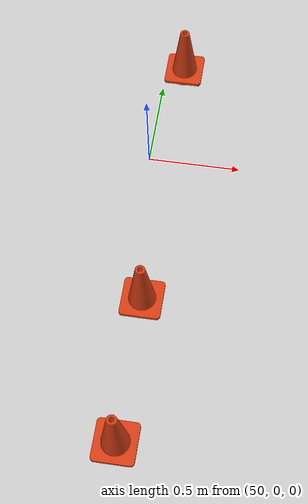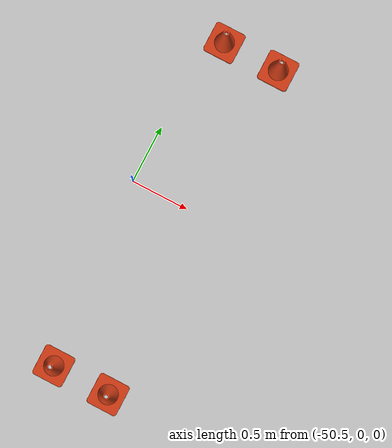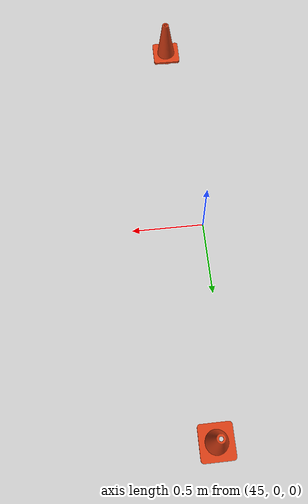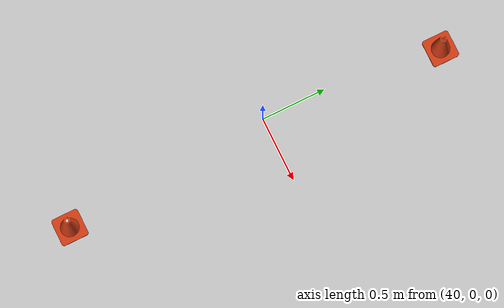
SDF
<sdf version="1.6">
 <world name="skidpad">
  <physics name="dart_physics" type="dart">
   <max_step_size>0.001</max_step_size>
   <real_time_update_rate>100</real_time_update_rate>
   <thread_count>20</thread_count>
  </physics>
  <plugin filename="gz-sim-scene-broadcaster-system" name="gz::sim::systems::SceneBroadcaster">
   <publish_rate>10</publish_rate>
  </plugin>
  <plugin filename="gz-sim-user-commands-system" name="gz::sim::systems::UserCommands"/>
  <plugin filename="gz-sim-physics-system" name="gz::sim::systems::Physics"/>
  <plugin filename="gz-sim-sensors-system" name="gz::sim::systems::Sensors">
   <render_engine>ogre2</render_engine>
  </plugin>
  <plugin filename="gz-sim-imu-system" name="gz::sim::systems::Imu"/>
  <plugin filename="ignition-gazebo-navsat-system" name="ignition::gazebo::systems::NavSat"/>
  <spherical_coordinates>
   <surface_model>EARTH_WGS84</surface_model>
   <world_frame_orientation>ENU</world_frame_orientation>
   <latitude_deg>-22.986687</latitude_deg>
   <longitude_deg>-43.202501</longitude_deg>
   <elevation>0</elevation>
   <heading_deg>180</heading_deg>
  </spherical_coordinates>
  <model name="ground_plane">
   <static>true</static>
   <link name="ground_plane_link">
    <collision name="collision">
     <geometry><plane><normal>0 0 1</normal><size>100 100</size></plane></geometry>
    </collision>
    <visual name="visual">
     <geometry><plane><normal>0 0 1</normal><size>100 100</size></plane></geometry>
     <material>
      <ambient>0.8 0.8 0.8 1</ambient>
      <diffuse>0.8 0.8 0.8 1</diffuse>
      <specular>0.1 0.1 0.1 1</specular>
      <emissive>0 0 0 1</emissive>
     </material>
    </visual>
   </link>
  </model>
  <light name="sun" type="directional">
   <pose>0 0 10 0 0 0</pose>
   <diffuse>1 1 1 1</diffuse>
   <specular>0.1 0.1 0.1 1</specular>
   <attenuation>
    <range>1000</range>
    <constant>0.9</constant>
    <linear>0.01</linear>
    <quadratic>0.001</quadratic>
   </attenuation>
   <direction>-0.5 0.5 -1</direction>
  </light>
  <include>
   <pose>30.0 1.5 0.15 0 0 0</pose>
   <uri>model://orange_cone</uri>
   <name>orange_cone_28</name>
   <covariance x="0.01" y="0.01" xy="0.0"/>
  </include>
  <include>
   <pose>30.0 -1.5 0.15 0 0 0</pose>
   <uri>model://orange_cone</uri>
   <name>orange_cone_29</name>
   <covariance x="0.01" y="0.01" xy="0.0"/>
  </include>
  <include>
   <pose>35.0 1.5 0.15 0 0 0</pose>
   <uri>model://orange_cone</uri>
   <name>orange_cone_30</name>
   <covariance x="0.01" y="0.01" xy="0.0"/>
  </include>
  <include>
   <pose>35.0 -1.5 0.15 0 0 0</pose>
   <uri>model://orange_cone</uri>
   <name>orange_cone_31</name>
   <covariance x="0.01" y="0.01" xy="0.0"/>
  </include>
  <include>
   <pose>40.0 1.5 0.15 0 0 0</pose>
   <uri>model://orange_cone</uri>
   <name>orange_cone_32</name>
   <covariance x="0.01" y="0.01" xy="0.0"/>
  </include>
  <include>
   <pose>40.0 -1.5 0.15 0 0 0</pose>
   <uri>model://orange_cone</uri>
   <name>orange_cone_33</name>
   <covariance x="0.01" y="0.01" xy="0.0"/>
  </include>
  <include>
   <pose>45.0 1.5 0.15 0 0 0</pose>
   <uri>model://orange_cone</uri>
   <name>orange_cone_34</name>
   <covariance x="0.01" y="0.01" xy="0.0"/>
  </include>
  <include>
   <pose>45.0 -1.5 0.15 0 0 0</pose>
   <uri>model://orange_cone</uri>
   <name>orange_cone_35</name>
   <covariance x="0.01" y="0.01" xy="0.0"/>
  </include>
  <include>
   <pose>50.0 1.5 0.15 0 0 0</pose>
   <uri>model://orange_cone</uri>
   <name>orange_cone_36</name>
   <covariance x="0.01" y="0.01" xy="0.0"/>
  </include>
  <include>
   <pose>50.0 -1.5 0.15 0 0 0</pose>
   <uri>model://orange_cone</uri>
   <name>orange_cone_37</name>
   <covariance x="0.01" y="0.01" xy="0.0"/>
  </include>
  <include>
   <pose>50.0 0.75 0.15 0 0 0</pose>
   <uri>model://orange_cone</uri>
   <name>orange_cone_38</name>
   <covariance x="0.01" y="0.01" xy="0.0"/>
  </include>
  <include>
   <pose>50.0 -0.75 0.15 0 0 0</pose>
   <uri>model://orange_cone</uri>
   <name>orange_cone_39</name>
   <covariance x="0.01" y="0.01" xy="0.0"/>
  </include>
  <include>
   <pose>-50.0 1.5 0.15 0 0 0</pose>
   <uri>model://big_cone</uri>
   <name>big_cone_40</name>
   <covariance x="0.01" y="0.01" xy="0.0"/>
  </include>
  <include>
   <pose>-50.0 -1.5 0.15 0 0 0</pose>
   <uri>model://big_cone</uri>
   <name>big_cone_41</name>
   <covariance x="0.01" y="0.01" xy="0.0"/>
  </include>
  <include>
   <pose>-50.5 1.5 0.15 0 0 0</pose>
   <uri>model://big_cone</uri>
   <name>big_cone_42</name>
   <covariance x="0.01" y="0.01" xy="0.0"/>
  </include>
  <include>
   <pose>-50.5 -1.5 0.15 0 0 0</pose>
   <uri>model://big_cone</uri>
   <name>big_cone_43</name>
   <covariance x="0.01" y="0.01" xy="0.0"/>
  </include>
  <include>
   <pose>25.0 1.5 0.15 0 0 0</pose>
   <uri>model://big_cone</uri>
   <name>big_cone_44</name>
   <covariance x="0.01" y="0.01" xy="0.0"/>
  </include>
  <include>
   <pose>25.0 -1.5 0.15 0 0 0</pose>
   <uri>model://big_cone</uri>
   <name>big_cone_45</name>
   <covariance x="0.01" y="0.01" xy="0.0"/>
  </include>
 </world>
</sdf>

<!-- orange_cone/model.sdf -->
<sdf version="1.6">
  <model name="orange_cone">
    <static>true</static>
    <link name="body">
      <visual name="visual">
        <pose>0 0 -0.15 1.5708 0 0</pose>
        <geometry>
          <mesh>
            <uri>model://orange_cone/meshes/300mm_orange_road_cone.stl</uri>
            <scale>0.001 0.001 0.001</scale>
          </mesh>
        </geometry>
        <material>
              <!-- Vivid orange: -->
          <ambient>0.75 0.22 0.08 1</ambient>
          <diffuse>0.85 0.24 0.08 1</diffuse>
          <specular>0.25 0.13 0.04 1</specular>
          <emissive>0.0 0.0 0.0 1</emissive>

        </material>
      </visual>
      <collision name="collision">
        <pose>0 0 0 1.5708 0 0</pose>
        <geometry>
          <mesh>
            <uri>model://orange_cone/meshes/300mm_orange_road_cone.stl</uri>
            <scale>0.001 0.001 0.001</scale>
          </mesh>
        </geometry>
      </collision>
    </link>
  </model>
</sdf>

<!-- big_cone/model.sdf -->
<sdf version="1.6">
  <model name="big_cone">
    <static>true</static>
    <link name="body">
      <visual name="visual">
        <pose>0 0 -0.15 1.5708 0 0</pose>
        <geometry>
          <mesh>
            <uri>model://big_cone/meshes/450mm_Road_Cone_Orange.stl</uri>
            <scale>0.001 0.001 0.001</scale>
          </mesh>
        </geometry>
        <material>
              <!-- Vivid big: -->
          <ambient>0.75 0.22 0.08 1</ambient>
          <diffuse>0.85 0.24 0.08 1</diffuse>
          <specular>0.25 0.13 0.04 1</specular>
          <emissive>0.0 0.0 0.0 1</emissive>

        </material>
      </visual>
      <collision name="collision">
        <pose>0 0 0 1.5708 0 0</pose>
        <geometry>
          <mesh>
            <uri>model://big_cone/meshes/450mm_Road_Cone_Orange.stl</uri>
            <scale>0.001 0.001 0.001</scale>
          </mesh>
        </geometry>
      </collision>
    </link>
  </model>
</sdf>
